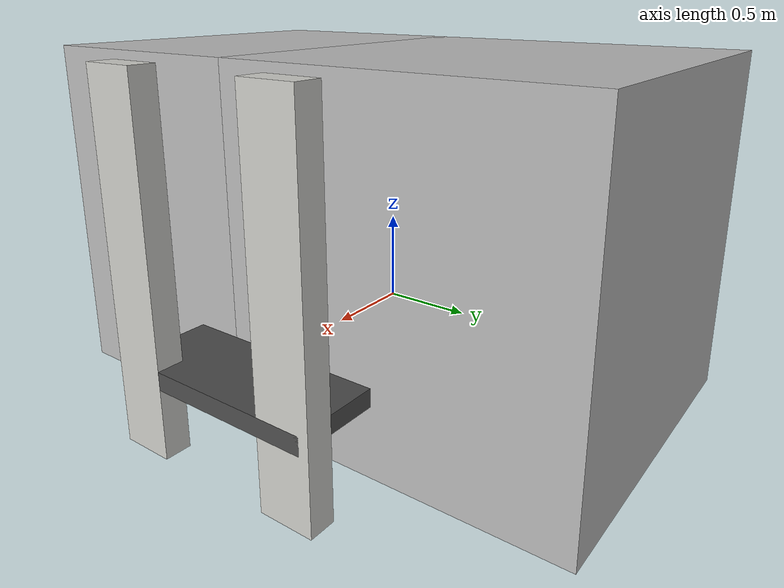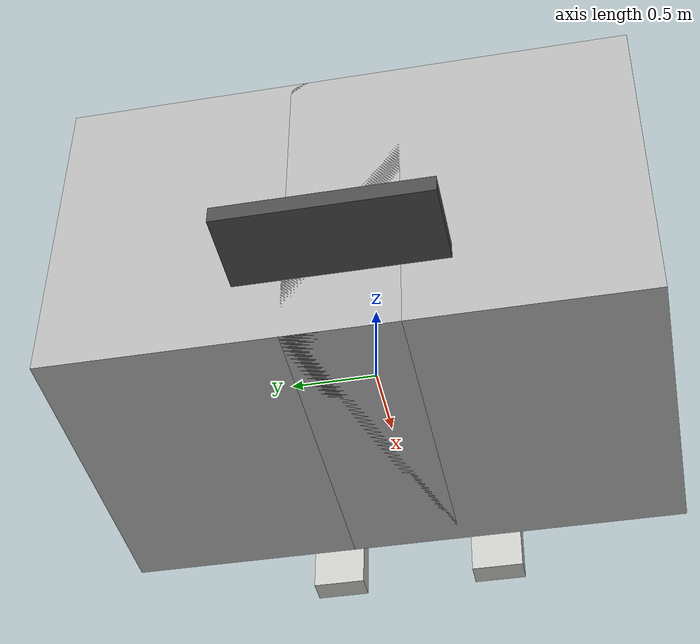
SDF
<?xml version="1.0" ?>
<sdf version="1.5">
  <model name="task4">

    <include>
      <name>task4_road</name>
      <pose>0 0 -0.05 0 0 0</pose>
      <uri>model://task4_road</uri>
    </include>

    <include>
      <name>wall_3125_1</name>
      <pose>1.425 0.5 0.5 0 0 0</pose>
      <uri>model://wall_3125</uri>
    </include>
    <include>
      <name>wall_3125_2</name>
      <pose>1.425 -0.5 0.5 0 0 0</pose>
      <uri>model://wall_3125</uri>
    </include>

    <include>
      <name>wall_3_1</name>
      <pose>0 0.675 0.5 0 0 0</pose>
      <uri>model://wall_3</uri>
    </include>
    <include>
      <name>wall_3_2</name>
      <pose>0 -0.675 0.5 0 0 0</pose>
      <uri>model://wall_3</uri>
    </include>

    <include>
      <name>column</name>
      <pose>0 0.525 0.25 0 0 0</pose>
      <uri>model://column</uri>
    </include>
  </model>
</sdf>

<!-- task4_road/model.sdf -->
<sdf version='1.6'>
  <model name='task4_road'>
    <pose frame=''>0 0 -0.1 -0 0</pose>
    <link name='task4'>
      <collision name='task4_Collision'>
        <geometry>
          <box>
            <size>3 1.2 0.1</size>
          </box>
        </geometry>
        <pose frame=''>0 0 0 0 -0 0</pose>
      </collision>
      <visual name='task4_Visual'>
        <pose frame=''>0 0 0 0 -0 0</pose>
        <geometry>
          <box>
            <size>3 1.2 0.1</size>
          </box>
        </geometry>
        <material>
          <script>
            <uri>file://media/materials/scripts/gazebo.material</uri>
            <name>Gazebo/Road</name>
          </script>
          <ambient>1 1 1 1</ambient>
        </material>
        <meta>
          <layer>0</layer>
        </meta>
      </visual>
      <pose frame=''>0 0 0 0 -0 0</pose>
    </link>
    <static>1</static>
  </model>
</sdf>

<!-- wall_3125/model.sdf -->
<sdf version='1.6'>
  <model name='wall_3125'>
    <pose frame=''>0 0 0.5 0 -0 0</pose>
    <link name='Wall_45'>
      <collision name='Wall_45_Collision'>
        <geometry>
          <box>
            <size>0.15 0.3125 2</size>
          </box>
        </geometry>
        <pose frame=''>0 0 0 0 -0 0</pose>
      </collision>
      <visual name='Wall_45_Visual'>
        <pose frame=''>0 0 0 0 -0 0</pose>
        <geometry>
          <box>
            <size>0.15 0.3125 2</size>
          </box>
        </geometry>
        <material>
          <script>
            <uri>file://media/materials/scripts/gazebo.material</uri>
            <name>Gazebo/CeilingTiled</name>
          </script>
          <ambient>1 1 1 1</ambient>
        </material>
        <meta>
          <layer>0</layer>
        </meta>
      </visual>
      <pose frame=''>0 0 0 0 -0 0</pose>
    </link>
    <static>1</static>
  </model>
</sdf>

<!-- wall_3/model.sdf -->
<sdf version="1.6">
  <model name="wall_3">
    <static>true</static>
    <link name="link">
      <collision name="collision">
        <pose>0 0 0 0 0 0</pose>
        <geometry>
          <mesh>
            <uri>model://wall_3/meshes/wall_3.dae</uri>
            <scale>1 1 1</scale>
          </mesh>
        </geometry>
        <surface>
          <contact>
            <collide_bitmask>2</collide_bitmask>
          </contact>
        </surface>
      </collision>
      <visual name="visual">
        <meta>
          <layer>0</layer>
        </meta>
        <pose>0 0 0 0 0 0</pose>
        <geometry>
          <mesh>
            <uri>model://wall_3/meshes/wall_3.dae</uri>
            <scale>1 1 1</scale>
          </mesh>
        </geometry>
      </visual>
    </link>
  </model>
</sdf>

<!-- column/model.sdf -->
<sdf version='1.6'>
  <model name='column'>
    <pose frame=''>0 0 0.5 0 -0 0</pose>
    <link name='Wall_45'>
      <collision name='Wall_45_Collision'>
        <geometry>
          <box>
            <size>0.15 0.15 0.5</size>
          </box>
        </geometry>
        <pose frame=''>0 0 0 0 -0 0</pose>
      </collision>
      <visual name='Wall_45_Visual'>
        <pose frame=''>0 0 0 0 -0 0</pose>
        <geometry>
          <box>
            <size>0.15 0.15 0.5</size>
          </box>
        </geometry>
        <material>
          <script>
            <uri>file://media/materials/scripts/gazebo.material</uri>
            <name>Gazebo/DarkGrey</name>
          </script>
          <ambient>1 1 1 1</ambient>
        </material>
        <meta>
          <layer>0</layer>
        </meta>
      </visual>
      <pose frame=''>0 0 0 0 -0 0</pose>
    </link>
    <static>1</static>
  </model>
</sdf>
